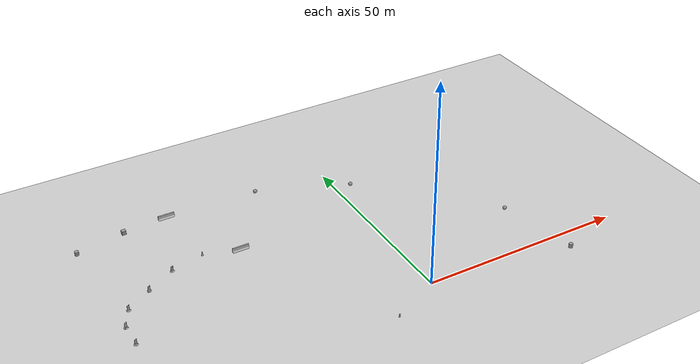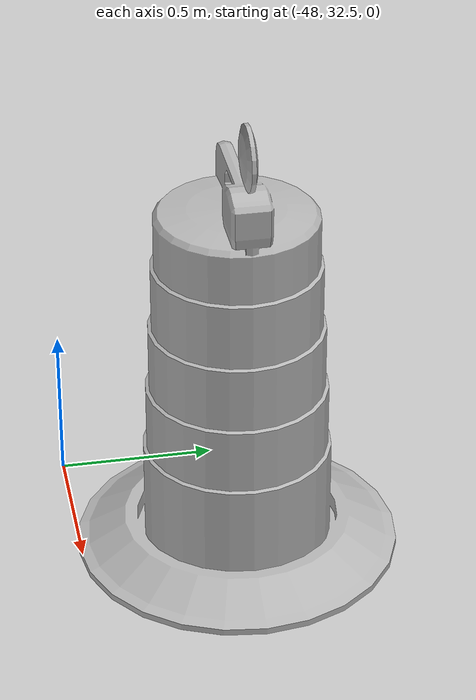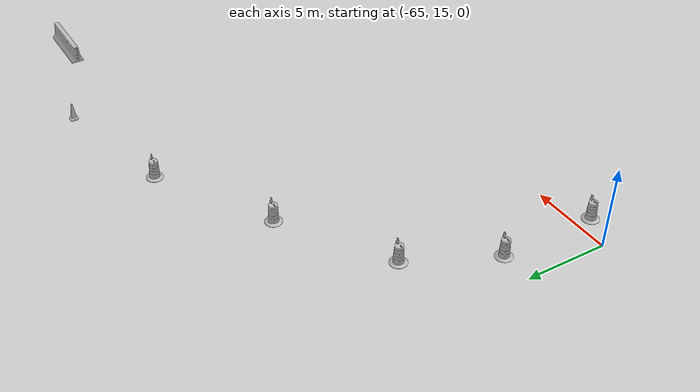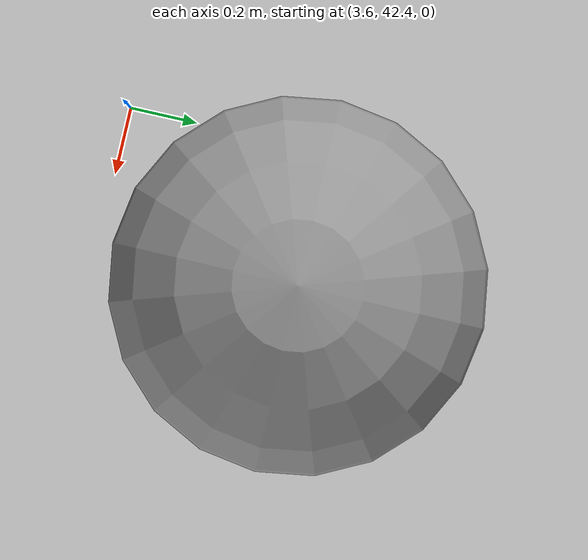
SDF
<sdf version="1.4">
 <world name="default">
  <model name="ground_plane">
   <static>1</static>
   <link name="link">
    <collision name="collision">
     <geometry><plane><normal>0 0 1</normal><size>100 100</size></plane></geometry>
     <surface><friction><ode><mu>100</mu><mu2>50</mu2></ode></friction></surface>
    </collision>
    <visual name="visual">
     <cast_shadows>0</cast_shadows>
     <geometry><plane><normal>0 0 1</normal><size>100 100</size></plane></geometry>
     <material>
      <script><uri>file://media/materials/scripts/gazebo.material</uri><name>Gazebo/Grey</name></script>
     </material>
    </visual>
    <velocity_decay><linear>0</linear><angular>0</angular></velocity_decay>
   </link>
  </model>
  <light name="sun" type="directional">
   <pose>0 0 10 0 -0 0</pose>
   <diffuse>0.8 0.8 0.8 1</diffuse>
   <specular>0.2 0.2 0.2 1</specular>
   <attenuation>
    <range>1000</range>
    <constant>0.9</constant>
    <linear>0.01</linear>
    <quadratic>0.001</quadratic>
   </attenuation>
   <direction>-0.5 0.1 -0.9</direction>
  </light>
  <physics type="ode">
   <max_step_size>0.001</max_step_size>
   <real_time_factor>1</real_time_factor>
   <real_time_update_rate>1000</real_time_update_rate>
   <gravity>0 0 -9.8</gravity>
  </physics>
  <scene><ambient>0.4 0.4 0.4 1</ambient><background>0.7 0.7 0.7 1</background><shadows>1</shadows></scene>
  <spherical_coordinates>
   <surface_model>EARTH_WGS84</surface_model>
   <latitude_deg>0</latitude_deg>
   <longitude_deg>0</longitude_deg>
   <elevation>0</elevation>
   <heading_deg>0</heading_deg>
  </spherical_coordinates>
  <model name="Construction Cone">
   <link name="link">
    <collision name="collision">
     <geometry>
      <mesh><scale>10 10 10</scale><uri>model://construction_cone/meshes/construction_cone.dae</uri></mesh>
     </geometry>
    </collision>
    <visual name="visual">
     <geometry>
      <mesh><scale>10 10 10</scale><uri>model://construction_cone/meshes/construction_cone.dae</uri></mesh>
     </geometry>
    </visual>
    <velocity_decay><linear>0</linear><angular>0</angular></velocity_decay>
    <inertial>
     <inertia><ixx>1</ixx><ixy>0</ixy><ixz>0</ixz><iyy>1</iyy><iyz>0</iyz><izz>1</izz></inertia>
     <mass>1</mass>
    </inertial>
   </link>
   <pose>-39.4073 35 -9e-06 0 1e-06 0</pose>
   <static>0</static>
  </model>
  <model name="Construction Barrel">
   <link name="link">
    <inertial>
     <pose>0 0 0.4 0 -0 0</pose>
     <mass>500</mass>
     <inertia><ixx>51.2096</ixx><iyy>51.2096</iyy><izz>25</izz><ixy>0</ixy><ixz>0</ixz><iyz>0</iyz></inertia>
    </inertial>
    <collision name="collision">
     <geometry><mesh><uri>model://construction_barrel/meshes/construction_barrel.dae</uri></mesh></geometry>
    </collision>
    <visual name="visual">
     <geometry><mesh><uri>model://construction_barrel/meshes/construction_barrel.dae</uri></mesh></geometry>
    </visual>
    <velocity_decay><linear>0</linear><angular>0</angular></velocity_decay>
   </link>
   <pose>-63 14.0009 1e-06 -1e-06 -2e-06 -0.00161</pose>
   <static>0</static>
  </model>
  <model name="Construction Barrel_0">
   <link name="link">
    <inertial>
     <pose>0 0 0.4 0 -0 0</pose>
     <mass>500</mass>
     <inertia><ixx>51.2096</ixx><iyy>51.2096</iyy><izz>25</izz><ixy>0</ixy><ixz>0</ixz><iyz>0</iyz></inertia>
    </inertial>
    <collision name="collision">
     <geometry><mesh><uri>model://construction_barrel/meshes/construction_barrel.dae</uri></mesh></geometry>
    </collision>
    <visual name="visual">
     <geometry><mesh><uri>model://construction_barrel/meshes/construction_barrel.dae</uri></mesh></geometry>
    </visual>
    <velocity_decay><linear>0</linear><angular>0</angular></velocity_decay>
   </link>
   <pose>-63 20.0009 0 5e-06 1e-06 -0.001502</pose>
   <static>0</static>
  </model>
  <model name="Construction Barrel_1">
   <link name="link">
    <inertial>
     <pose>0 0 0.4 0 -0 0</pose>
     <mass>500</mass>
     <inertia><ixx>51.2096</ixx><iyy>51.2096</iyy><izz>25</izz><ixy>0</ixy><ixz>0</ixz><iyz>0</iyz></inertia>
    </inertial>
    <collision name="collision">
     <geometry><mesh><uri>model://construction_barrel/meshes/construction_barrel.dae</uri></mesh></geometry>
    </collision>
    <visual name="visual">
     <geometry><mesh><uri>model://construction_barrel/meshes/construction_barrel.dae</uri></mesh></geometry>
    </visual>
    <velocity_decay><linear>0</linear><angular>0</angular></velocity_decay>
   </link>
   <pose>-60.5994 25.0008 -0 0 -0 -0.001455</pose>
   <static>0</static>
  </model>
  <model name="Construction Barrel_2">
   <link name="link">
    <inertial>
     <pose>0 0 0.4 0 -0 0</pose>
     <mass>500</mass>
     <inertia><ixx>51.2096</ixx><iyy>51.2096</iyy><izz>25</izz><ixy>0</ixy><ixz>0</ixz><iyz>0</iyz></inertia>
    </inertial>
    <collision name="collision">
     <geometry><mesh><uri>model://construction_barrel/meshes/construction_barrel.dae</uri></mesh></geometry>
    </collision>
    <visual name="visual">
     <geometry><mesh><uri>model://construction_barrel/meshes/construction_barrel.dae</uri></mesh></geometry>
    </visual>
    <velocity_decay><linear>0</linear><angular>0</angular></velocity_decay>
   </link>
   <pose>-54.4355 29.0008 -1e-06 -1e-06 -4e-06 -0.001421</pose>
   <static>0</static>
  </model>
  <model name="Construction Barrel_3">
   <link name="link">
    <inertial>
     <pose>0 0 0.4 0 -0 0</pose>
     <mass>500</mass>
     <inertia><ixx>51.2096</ixx><iyy>51.2096</iyy><izz>25</izz><ixy>0</ixy><ixz>0</ixz><iyz>0</iyz></inertia>
    </inertial>
    <collision name="collision">
     <geometry><mesh><uri>model://construction_barrel/meshes/construction_barrel.dae</uri></mesh></geometry>
    </collision>
    <visual name="visual">
     <geometry><mesh><uri>model://construction_barrel/meshes/construction_barrel.dae</uri></mesh></geometry>
    </visual>
    <velocity_decay><linear>0</linear><angular>0</angular></velocity_decay>
   </link>
   <pose>-47.5074 33.0008 1e-06 -1e-06 -2e-06 -0.001364</pose>
   <static>0</static>
  </model>
  <model name="jersey_barrier_2">
   <static>1</static>
   <link name="link">
    <visual name="visual">
     <geometry><mesh><uri>model://jersey_barrier/meshes/jersey_barrier.dae</uri></mesh></geometry>
    </visual>
    <collision name="upright">
     <pose>0 0 0.5715 0 -0 0</pose>
     <geometry><box><size>4.06542 0.3063 1.143</size></box></geometry>
    </collision>
    <collision name="base">
     <pose>0 0 0.032258 0 -0 0</pose>
     <geometry><box><size>4.06542 0.8107 0.064516</size></box></geometry>
    </collision>
    <collision name="base2">
     <pose>0 0 0.1 0 -0 0</pose>
     <geometry><box><size>4.06542 0.65 0.1</size></box></geometry>
    </collision>
    <collision name="base3">
     <pose>0 0 0.2 0 -0 0</pose>
     <geometry><box><size>4.06542 0.5 0.1</size></box></geometry>
    </collision>
    <collision name="left-angle">
     <pose>0 -0.224 0.2401 0.9 -0 0</pose>
     <geometry><box><size>4.06542 0.5 0.064516</size></box></geometry>
    </collision>
    <collision name="right-angle">
     <pose>0 0.224 0.2401 -0.9 0 0</pose>
     <geometry><box><size>4.06542 0.5 0.064516</size></box></geometry>
    </collision>
    <velocity_decay><linear>0</linear><angular>0</angular></velocity_decay>
   </link>
   <pose>-31 32.4465 0 0 -0 0</pose>
  </model>
  <model name="unit_cylinder_1">
   <pose>35 -5 0.499998 1e-06 -0 0</pose>
   <link name="link">
    <inertial>
     <mass>1</mass>
     <inertia><ixx>1</ixx><ixy>0</ixy><ixz>0</ixz><iyy>1</iyy><iyz>0</iyz><izz>1</izz></inertia>
    </inertial>
    <collision name="collision">
     <geometry><cylinder><radius>0.5</radius><length>1</length></cylinder></geometry>
    </collision>
    <visual name="visual">
     <geometry><cylinder><radius>0.5</radius><length>1</length></cylinder></geometry>
     <material>
      <script><uri>file://media/materials/scripts/gazebo.material</uri><name>Gazebo/Grey</name></script>
     </material>
    </visual>
    <velocity_decay><linear>0</linear><angular>0</angular></velocity_decay>
   </link>
   <static>0</static>
  </model>
  <model name="unit_sphere_1">
   <pose>31 15 0.5 0 -0 0</pose>
   <link name="link">
    <inertial>
     <mass>1</mass>
     <inertia><ixx>1</ixx><ixy>0</ixy><ixz>0</ixz><iyy>1</iyy><iyz>0</iyz><izz>1</izz></inertia>
    </inertial>
    <collision name="collision"><geometry><sphere><radius>0.5</radius></sphere></geometry></collision>
    <visual name="visual">
     <geometry><sphere><radius>0.5</radius></sphere></geometry>
     <material>
      <script><uri>file://media/materials/scripts/gazebo.material</uri><name>Gazebo/Grey</name></script>
     </material>
    </visual>
    <velocity_decay><linear>0</linear><angular>0</angular></velocity_decay>
   </link>
   <static>0</static>
  </model>
  <model name="unit_box_1">
   <pose>-52 52 0.5 0 -0 0</pose>
   <link name="link">
    <inertial>
     <mass>1</mass>
     <inertia><ixx>1</ixx><ixy>0</ixy><ixz>0</ixz><iyy>1</iyy><iyz>0</iyz><izz>1</izz></inertia>
    </inertial>
    <collision name="collision"><geometry><box><size>1 1 1</size></box></geometry></collision>
    <visual name="visual">
     <geometry><box><size>1 1 1</size></box></geometry>
     <material>
      <script><uri>file://media/materials/scripts/gazebo.material</uri><name>Gazebo/Grey</name></script>
     </material>
    </visual>
    <velocity_decay><linear>0</linear><angular>0</angular></velocity_decay>
   </link>
   <static>0</static>
  </model>
  <model name="unit_cylinder_2">
   <pose>-64 49.5742 0.499992 -1e-06 -0 0</pose>
   <link name="link">
    <inertial>
     <mass>1</mass>
     <inertia><ixx>1</ixx><ixy>0</ixy><ixz>0</ixz><iyy>1</iyy><iyz>0</iyz><izz>1</izz></inertia>
    </inertial>
    <collision name="collision">
     <geometry><cylinder><radius>0.5</radius><length>1</length></cylinder></geometry>
    </collision>
    <visual name="visual">
     <geometry><cylinder><radius>0.5</radius><length>1</length></cylinder></geometry>
     <material>
      <script><uri>file://media/materials/scripts/gazebo.material</uri><name>Gazebo/Grey</name></script>
     </material>
    </visual>
    <velocity_decay><linear>0</linear><angular>0</angular></velocity_decay>
   </link>
   <static>0</static>
  </model>
  <model name="fire_hydrant">
   <static>1</static>
   <link name="link">
    <collision name="collision">
     <geometry><mesh><uri>model://fire_hydrant/meshes/fire_hydrant.dae</uri></mesh></geometry>
    </collision>
    <visual name="visual">
     <geometry><mesh><uri>model://fire_hydrant/meshes/fire_hydrant.dae</uri></mesh></geometry>
    </visual>
    <velocity_decay><linear>0</linear><angular>0</angular></velocity_decay>
   </link>
   <pose>-12 -6 0 0 -0 0</pose>
  </model>
  <model name="jersey_barrier">
   <static>1</static>
   <link name="link">
    <visual name="visual">
     <geometry><mesh><uri>model://jersey_barrier/meshes/jersey_barrier.dae</uri></mesh></geometry>
    </visual>
    <collision name="upright">
     <pose>0 0 0.5715 0 -0 0</pose>
     <geometry><box><size>4.06542 0.3063 1.143</size></box></geometry>
    </collision>
    <collision name="base">
     <pose>0 0 0.032258 0 -0 0</pose>
     <geometry><box><size>4.06542 0.8107 0.064516</size></box></geometry>
    </collision>
    <collision name="base2">
     <pose>0 0 0.1 0 -0 0</pose>
     <geometry><box><size>4.06542 0.65 0.1</size></box></geometry>
    </collision>
    <collision name="base3">
     <pose>0 0 0.2 0 -0 0</pose>
     <geometry><box><size>4.06542 0.5 0.1</size></box></geometry>
    </collision>
    <collision name="left-angle">
     <pose>0 -0.224 0.2401 0.9 -0 0</pose>
     <geometry><box><size>4.06542 0.5 0.064516</size></box></geometry>
    </collision>
    <collision name="right-angle">
     <pose>0 0.224 0.2401 -0.9 0 0</pose>
     <geometry><box><size>4.06542 0.5 0.064516</size></box></geometry>
    </collision>
    <velocity_decay><linear>0</linear><angular>0</angular></velocity_decay>
   </link>
   <pose>-41 53 0 0 -0 0</pose>
  </model>
  <model name="unit_sphere_2">
   <pose>4 43 0.5 0 -0 0</pose>
   <link name="link">
    <inertial>
     <mass>1</mass>
     <inertia><ixx>1</ixx><ixy>0</ixy><ixz>0</ixz><iyy>1</iyy><iyz>0</iyz><izz>1</izz></inertia>
    </inertial>
    <collision name="collision"><geometry><sphere><radius>0.5</radius></sphere></geometry></collision>
    <visual name="visual">
     <geometry><sphere><radius>0.5</radius></sphere></geometry>
     <material>
      <script><uri>file://media/materials/scripts/gazebo.material</uri><name>Gazebo/Grey</name></script>
     </material>
    </visual>
    <velocity_decay><linear>0</linear><angular>0</angular></velocity_decay>
   </link>
   <static>0</static>
  </model>
  <model name="unit_sphere_3">
   <pose>-18 52 0.5 0 -0 0</pose>
   <link name="link">
    <inertial>
     <mass>1</mass>
     <inertia><ixx>1</ixx><ixy>0</ixy><ixz>0</ixz><iyy>1</iyy><iyz>0</iyz><izz>1</izz></inertia>
    </inertial>
    <collision name="collision"><geometry><sphere><radius>0.5</radius></sphere></geometry></collision>
    <visual name="visual">
     <geometry><sphere><radius>0.5</radius></sphere></geometry>
     <material>
      <script><uri>file://media/materials/scripts/gazebo.material</uri><name>Gazebo/Grey</name></script>
     </material>
    </visual>
    <velocity_decay><linear>0</linear><angular>0</angular></velocity_decay>
   </link>
   <static>0</static>
  </model>
 </world>
</sdf>
